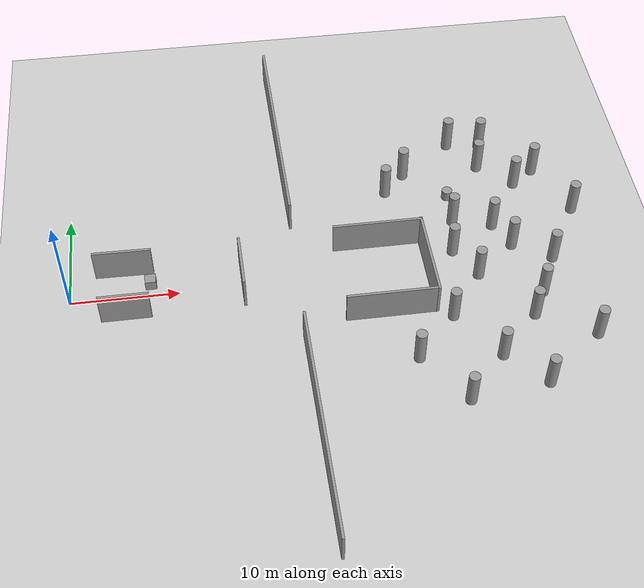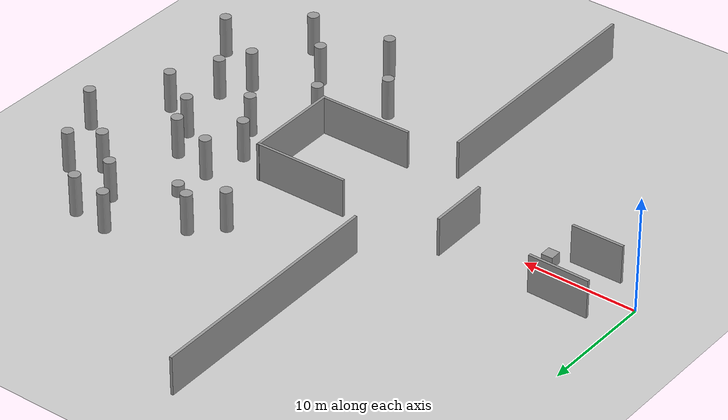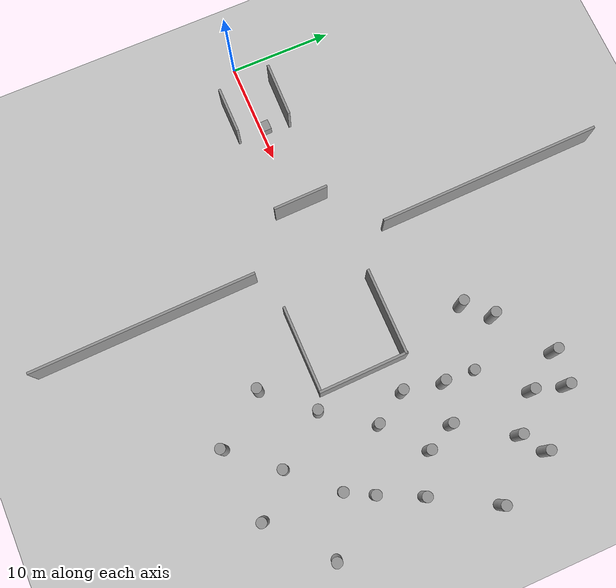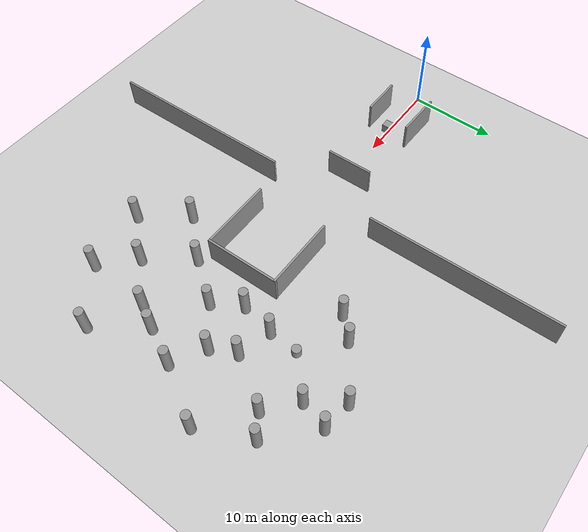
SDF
<sdf version="1.6">
 <world name="default">
  <plugin name="disable_physics" filename="libdisable_physics.so"/>
  <light name="sun" type="directional">
   <cast_shadows>0</cast_shadows>
   <pose>0 0 10 0 -0 0</pose>
   <diffuse>0.8 0.8 0.8 1</diffuse>
   <specular>0.2 0.2 0.2 1</specular>
   <attenuation>
    <range>1000</range>
    <constant>0.9</constant>
    <linear>0.01</linear>
    <quadratic>0.001</quadratic>
   </attenuation>
   <direction>-0.5 0.1 -0.9</direction>
  </light>
  <model name="ground_plane">
   <static>1</static>
   <link name="link">
    <collision name="collision">
     <geometry><plane><normal>0 0 1</normal><size>200 200</size></plane></geometry>
     <surface><friction><ode><mu>100</mu><mu2>50</mu2></ode></friction></surface>
    </collision>
    <visual name="visual">
     <cast_shadows>0</cast_shadows>
     <geometry><plane><normal>0 0 1</normal><size>200 200</size></plane></geometry>
     <material>
      <script><uri>file://media/materials/scripts/gazebo.material</uri><name>Gazebo/Grey</name></script>
     </material>
    </visual>
   </link>
  </model>
  <physics name="default_physics" default="0" type="ode">
   <max_step_size>0.001</max_step_size>
   <real_time_factor>1</real_time_factor>
   <real_time_update_rate>1000</real_time_update_rate>
  </physics>
  <scene><ambient>0.4 0.4 0.4 1</ambient><background>0.7 0.7 0.7 1</background><shadows>0</shadows></scene>
  <spherical_coordinates>
   <surface_model>EARTH_WGS84</surface_model>
   <latitude_deg>0</latitude_deg>
   <longitude_deg>0</longitude_deg>
   <elevation>0</elevation>
   <heading_deg>0</heading_deg>
  </spherical_coordinates>
  <gravity>0 0 -9.8</gravity>
  <magnetic_field>6e-06 2.3e-05 -4.2e-05</magnetic_field>
  <atmosphere type="adiabatic"/>
  <model name="unit_box_0_0">
   <pose>7.49173 0.286196 1.66667 0.000226 -8e-06 0.019931</pose>
   <link name="link">
    <inertial>
     <mass>1</mass>
     <inertia>
      <ixx>0.166667</ixx>
      <ixy>0</ixy>
      <ixz>0</ixz>
      <iyy>0.166667</iyy>
      <iyz>0</iyz>
      <izz>0.166667</izz>
     </inertia>
    </inertial>
    <collision name="collision"><geometry><box><size>0.999999 1 0.999999</size></box></geometry></collision>
    <visual name="visual">
     <geometry><box><size>0.999999 1 0.999999</size></box></geometry>
     <material>
      <script><name>Gazebo/Grey</name><uri>file://media/materials/scripts/gazebo.material</uri></script>
     </material>
    </visual>
   </link>
  </model>
  <model name="unit_box_0_0_clone">
   <pose>5.03452 2.80662 1.66712 6.7e-05 3e-06 -1.58611</pose>
   <link name="link">
    <inertial>
     <mass>1</mass>
     <inertia>
      <ixx>0.166667</ixx>
      <ixy>0</ixy>
      <ixz>0</ixz>
      <iyy>0.166667</iyy>
      <iyz>0</iyz>
      <izz>0.166667</izz>
     </inertia>
    </inertial>
    <collision name="collision"><geometry><box><size>0.237691 5.35848 3.33454</size></box></geometry></collision>
    <visual name="visual">
     <geometry><box><size>0.237691 5.35848 3.33454</size></box></geometry>
     <material>
      <script><name>Gazebo/Grey</name><uri>file://media/materials/scripts/gazebo.material</uri></script>
     </material>
    </visual>
   </link>
  </model>
  <model name="unit_box_0_0_clone_clone">
   <pose>5.09371 -2.35831 1.66712 6.7e-05 -3e-06 -1.56831</pose>
   <link name="link">
    <inertial>
     <mass>1</mass>
     <inertia>
      <ixx>0.166667</ixx>
      <ixy>0</ixy>
      <ixz>0</ixz>
      <iyy>0.166667</iyy>
      <iyz>0</iyz>
      <izz>0.166667</izz>
     </inertia>
    </inertial>
    <collision name="collision"><geometry><box><size>0.237691 4.56821 3.33454</size></box></geometry></collision>
    <visual name="visual">
     <geometry><box><size>0.237691 4.56821 3.33454</size></box></geometry>
     <material>
      <script><name>Gazebo/Grey</name><uri>file://media/materials/scripts/gazebo.material</uri></script>
     </material>
    </visual>
   </link>
  </model>
  <model name="unit_box_0_0_clone_0">
   <pose>15.8 0.490651 1.66667 -0.000226 8e-06 0.019874</pose>
   <link name="link">
    <inertial>
     <mass>1</mass>
     <inertia>
      <ixx>0.166667</ixx>
      <ixy>0</ixy>
      <ixz>0</ixz>
      <iyy>0.166667</iyy>
      <iyz>0</iyz>
      <izz>0.166667</izz>
     </inertia>
    </inertial>
    <collision name="collision"><geometry><box><size>0.237691 5.35848 3.33454</size></box></geometry></collision>
    <visual name="visual">
     <geometry><box><size>0.237691 5.35848 3.33454</size></box></geometry>
     <material>
      <script><name>Gazebo/Grey</name><uri>file://media/materials/scripts/gazebo.material</uri></script>
     </material>
    </visual>
   </link>
  </model>
  <model name="unit_box_0_0_clone_0_clone">
   <pose>20.6528 17.6306 1.66667 -0.000226 8e-06 0.019874</pose>
   <link name="link">
    <inertial>
     <mass>1</mass>
     <inertia>
      <ixx>0.166667</ixx>
      <ixy>0</ixy>
      <ixz>0</ixz>
      <iyy>0.166667</iyy>
      <iyz>0</iyz>
      <izz>0.166667</izz>
     </inertia>
    </inertial>
    <collision name="collision"><geometry><box><size>0.237691 21.9937 3.33454</size></box></geometry></collision>
    <visual name="visual">
     <geometry><box><size>0.237691 21.9937 3.33454</size></box></geometry>
     <material>
      <script><name>Gazebo/Grey</name><uri>file://media/materials/scripts/gazebo.material</uri></script>
     </material>
    </visual>
   </link>
  </model>
  <model name="unit_box_0_0_clone_0_clone_0">
   <pose>20.9778 -17.1378 1.66667 -0.000226 8e-06 0.019874</pose>
   <link name="link">
    <inertial>
     <mass>1</mass>
     <inertia>
      <ixx>0.166667</ixx>
      <ixy>0</ixy>
      <ixz>0</ixz>
      <iyy>0.166667</iyy>
      <iyz>0</iyz>
      <izz>0.166667</izz>
     </inertia>
    </inertial>
    <collision name="collision"><geometry><box><size>0.237691 21.9937 3.33454</size></box></geometry></collision>
    <visual name="visual">
     <geometry><box><size>0.237691 21.9937 3.33454</size></box></geometry>
     <material>
      <script><name>Gazebo/Grey</name><uri>file://media/materials/scripts/gazebo.material</uri></script>
     </material>
    </visual>
   </link>
  </model>
  <model name="unit_cylinder_0">
   <pose>36.5123 8.86063 0.5 0 -0 0</pose>
   <link name="link">
    <inertial>
     <mass>1</mass>
     <inertia><ixx>0.145833</ixx><ixy>0</ixy><ixz>0</ixz><iyy>0.145833</iyy><iyz>0</iyz><izz>0.125</izz></inertia>
    </inertial>
    <collision name="collision">
     <geometry><cylinder><radius>0.5</radius><length>1</length></cylinder></geometry>
    </collision>
    <visual name="visual">
     <geometry><cylinder><radius>0.5</radius><length>1</length></cylinder></geometry>
     <material>
      <script><name>Gazebo/Grey</name><uri>file://media/materials/scripts/gazebo.material</uri></script>
     </material>
    </visual>
   </link>
  </model>
  <model name="unit_cylinder_0_clone">
   <pose>35.7139 1.81409 0.5 0 -0 0</pose>
   <link name="link">
    <inertial>
     <mass>1</mass>
     <inertia><ixx>0.145833</ixx><ixy>0</ixy><ixz>0</ixz><iyy>0.145833</iyy><iyz>0</iyz><izz>0.125</izz></inertia>
    </inertial>
    <collision name="collision">
     <geometry><cylinder><radius>0.5</radius><length>6.03342</length></cylinder></geometry>
    </collision>
    <visual name="visual">
     <geometry><cylinder><radius>0.5</radius><length>6.03342</length></cylinder></geometry>
     <material>
      <script><name>Gazebo/Grey</name><uri>file://media/materials/scripts/gazebo.material</uri></script>
     </material>
    </visual>
   </link>
  </model>
  <model name="unit_cylinder_0_clone_0">
   <pose>34.3331 -5.78751 0.5 0 -0 0</pose>
   <link name="link">
    <inertial>
     <mass>1</mass>
     <inertia><ixx>0.145833</ixx><ixy>0</ixy><ixz>0</ixz><iyy>0.145833</iyy><iyz>0</iyz><izz>0.125</izz></inertia>
    </inertial>
    <collision name="collision">
     <geometry><cylinder><radius>0.5</radius><length>6.03342</length></cylinder></geometry>
    </collision>
    <visual name="visual">
     <geometry><cylinder><radius>0.5</radius><length>6.03342</length></cylinder></geometry>
     <material>
      <script><name>Gazebo/Grey</name><uri>file://media/materials/scripts/gazebo.material</uri></script>
     </material>
    </visual>
   </link>
  </model>
  <model name="unit_cylinder_0_clone_1">
   <pose>36.4257 5.60163 0.5 0 -0 0</pose>
   <link name="link">
    <inertial>
     <mass>1</mass>
     <inertia><ixx>0.145833</ixx><ixy>0</ixy><ixz>0</ixz><iyy>0.145833</iyy><iyz>0</iyz><izz>0.125</izz></inertia>
    </inertial>
    <collision name="collision">
     <geometry><cylinder><radius>0.5</radius><length>6.03342</length></cylinder></geometry>
    </collision>
    <visual name="visual">
     <geometry><cylinder><radius>0.5</radius><length>6.03342</length></cylinder></geometry>
     <material>
      <script><name>Gazebo/Grey</name><uri>file://media/materials/scripts/gazebo.material</uri></script>
     </material>
    </visual>
   </link>
  </model>
  <model name="unit_cylinder_0_clone_2">
   <pose>40.0951 4.60307 0.5 0 -0 0</pose>
   <link name="link">
    <inertial>
     <mass>1</mass>
     <inertia><ixx>0.145833</ixx><ixy>0</ixy><ixz>0</ixz><iyy>0.145833</iyy><iyz>0</iyz><izz>0.125</izz></inertia>
    </inertial>
    <collision name="collision">
     <geometry><cylinder><radius>0.5</radius><length>6.03342</length></cylinder></geometry>
    </collision>
    <visual name="visual">
     <geometry><cylinder><radius>0.5</radius><length>6.03342</length></cylinder></geometry>
     <material>
      <script><name>Gazebo/Grey</name><uri>file://media/materials/scripts/gazebo.material</uri></script>
     </material>
    </visual>
   </link>
  </model>
  <model name="unit_cylinder_0_clone_3">
   <pose>43.0121 -4.07604 0.5 0 -0 0</pose>
   <link name="link">
    <inertial>
     <mass>1</mass>
     <inertia><ixx>0.145833</ixx><ixy>0</ixy><ixz>0</ixz><iyy>0.145833</iyy><iyz>0</iyz><izz>0.125</izz></inertia>
    </inertial>
    <collision name="collision">
     <geometry><cylinder><radius>0.5</radius><length>6.03342</length></cylinder></geometry>
    </collision>
    <visual name="visual">
     <geometry><cylinder><radius>0.5</radius><length>6.03342</length></cylinder></geometry>
     <material>
      <script><name>Gazebo/Grey</name><uri>file://media/materials/scripts/gazebo.material</uri></script>
     </material>
    </visual>
   </link>
  </model>
  <model name="unit_cylinder_0_clone_4">
   <pose>44.8773 -0.138697 0.5 0 -0 0</pose>
   <link name="link">
    <inertial>
     <mass>1</mass>
     <inertia><ixx>0.145833</ixx><ixy>0</ixy><ixz>0</ixz><iyy>0.145833</iyy><iyz>0</iyz><izz>0.125</izz></inertia>
    </inertial>
    <collision name="collision">
     <geometry><cylinder><radius>0.5</radius><length>6.03342</length></cylinder></geometry>
    </collision>
    <visual name="visual">
     <geometry><cylinder><radius>0.5</radius><length>6.03342</length></cylinder></geometry>
     <material>
      <script><name>Gazebo/Grey</name><uri>file://media/materials/scripts/gazebo.material</uri></script>
     </material>
    </visual>
   </link>
  </model>
  <model name="unit_cylinder_0_clone_5">
   <pose>41.4106 1.8899 0.5 0 -0 0</pose>
   <link name="link">
    <inertial>
     <mass>1</mass>
     <inertia><ixx>0.145833</ixx><ixy>0</ixy><ixz>0</ixz><iyy>0.145833</iyy><iyz>0</iyz><izz>0.125</izz></inertia>
    </inertial>
    <collision name="collision">
     <geometry><cylinder><radius>0.5</radius><length>6.03342</length></cylinder></geometry>
    </collision>
    <visual name="visual">
     <geometry><cylinder><radius>0.5</radius><length>6.03342</length></cylinder></geometry>
     <material>
      <script><name>Gazebo/Grey</name><uri>file://media/materials/scripts/gazebo.material</uri></script>
     </material>
    </visual>
   </link>
  </model>
  <model name="unit_cylinder_0_clone_6">
   <pose>41.6644 -6.5691 0.5 0 -0 0</pose>
   <link name="link">
    <inertial>
     <mass>1</mass>
     <inertia><ixx>0.145833</ixx><ixy>0</ixy><ixz>0</ixz><iyy>0.145833</iyy><iyz>0</iyz><izz>0.125</izz></inertia>
    </inertial>
    <collision name="collision">
     <geometry><cylinder><radius>0.5</radius><length>6.03342</length></cylinder></geometry>
    </collision>
    <visual name="visual">
     <geometry><cylinder><radius>0.5</radius><length>6.03342</length></cylinder></geometry>
     <material>
      <script><name>Gazebo/Grey</name><uri>file://media/materials/scripts/gazebo.material</uri></script>
     </material>
    </visual>
   </link>
  </model>
  <model name="unit_cylinder_0_clone_7">
   <pose>37.5721 -1.32123 0.5 0 -0 0</pose>
   <link name="link">
    <inertial>
     <mass>1</mass>
     <inertia><ixx>0.145833</ixx><ixy>0</ixy><ixz>0</ixz><iyy>0.145833</iyy><iyz>0</iyz><izz>0.125</izz></inertia>
    </inertial>
    <collision name="collision">
     <geometry><cylinder><radius>0.5</radius><length>6.03342</length></cylinder></geometry>
    </collision>
    <visual name="visual">
     <geometry><cylinder><radius>0.5</radius><length>6.03342</length></cylinder></geometry>
     <material>
      <script><name>Gazebo/Grey</name><uri>file://media/materials/scripts/gazebo.material</uri></script>
     </material>
    </visual>
   </link>
  </model>
  <model name="unit_cylinder_0_clone_8">
   <pose>45.5642 11.3365 0.5 0 -0 0</pose>
   <link name="link">
    <inertial>
     <mass>1</mass>
     <inertia><ixx>0.145833</ixx><ixy>0</ixy><ixz>0</ixz><iyy>0.145833</iyy><iyz>0</iyz><izz>0.125</izz></inertia>
    </inertial>
    <collision name="collision">
     <geometry><cylinder><radius>0.5</radius><length>6.03342</length></cylinder></geometry>
    </collision>
    <visual name="visual">
     <geometry><cylinder><radius>0.5</radius><length>6.03342</length></cylinder></geometry>
     <material>
      <script><name>Gazebo/Grey</name><uri>file://media/materials/scripts/gazebo.material</uri></script>
     </material>
    </visual>
   </link>
  </model>
  <model name="unit_cylinder_0_clone_9">
   <pose>43.3589 9.77113 0.5 0 -0 0</pose>
   <link name="link">
    <inertial>
     <mass>1</mass>
     <inertia><ixx>0.145833</ixx><ixy>0</ixy><ixz>0</ixz><iyy>0.145833</iyy><iyz>0</iyz><izz>0.125</izz></inertia>
    </inertial>
    <collision name="collision">
     <geometry><cylinder><radius>0.5</radius><length>6.03342</length></cylinder></geometry>
    </collision>
    <visual name="visual">
     <geometry><cylinder><radius>0.5</radius><length>6.03342</length></cylinder></geometry>
     <material>
      <script><name>Gazebo/Grey</name><uri>file://media/materials/scripts/gazebo.material</uri></script>
     </material>
    </visual>
   </link>
  </model>
  <model name="unit_cylinder_0_clone_10">
   <pose>48.2101 5.73588 0.5 0 -0 0</pose>
   <link name="link">
    <inertial>
     <mass>1</mass>
     <inertia><ixx>0.145833</ixx><ixy>0</ixy><ixz>0</ixz><iyy>0.145833</iyy><iyz>0</iyz><izz>0.125</izz></inertia>
    </inertial>
    <collision name="collision">
     <geometry><cylinder><radius>0.5</radius><length>6.03342</length></cylinder></geometry>
    </collision>
    <visual name="visual">
     <geometry><cylinder><radius>0.5</radius><length>6.03342</length></cylinder></geometry>
     <material>
      <script><name>Gazebo/Grey</name><uri>file://media/materials/scripts/gazebo.material</uri></script>
     </material>
    </visual>
   </link>
  </model>
  <model name="unit_cylinder_0_clone_11">
   <pose>37.8195 -10.6225 0.5 0 -0 0</pose>
   <link name="link">
    <inertial>
     <mass>1</mass>
     <inertia><ixx>0.145833</ixx><ixy>0</ixy><ixz>0</ixz><iyy>0.145833</iyy><iyz>0</iyz><izz>0.125</izz></inertia>
    </inertial>
    <collision name="collision">
     <geometry><cylinder><radius>0.5</radius><length>6.03342</length></cylinder></geometry>
    </collision>
    <visual name="visual">
     <geometry><cylinder><radius>0.5</radius><length>6.03342</length></cylinder></geometry>
     <material>
      <script><name>Gazebo/Grey</name><uri>file://media/materials/scripts/gazebo.material</uri></script>
     </material>
    </visual>
   </link>
  </model>
  <model name="unit_cylinder_0_clone_12">
   <pose>32.6997 12.3147 0.5 0 -0 0</pose>
   <link name="link">
    <inertial>
     <mass>1</mass>
     <inertia><ixx>0.145833</ixx><ixy>0</ixy><ixz>0</ixz><iyy>0.145833</iyy><iyz>0</iyz><izz>0.125</izz></inertia>
    </inertial>
    <collision name="collision">
     <geometry><cylinder><radius>0.5</radius><length>6.03342</length></cylinder></geometry>
    </collision>
    <visual name="visual">
     <geometry><cylinder><radius>0.5</radius><length>6.03342</length></cylinder></geometry>
     <material>
      <script><name>Gazebo/Grey</name><uri>file://media/materials/scripts/gazebo.material</uri></script>
     </material>
    </visual>
   </link>
  </model>
  <model name="unit_cylinder_0_clone_13">
   <pose>30.5887 10.1395 0.5 0 -0 0</pose>
   <link name="link">
    <inertial>
     <mass>1</mass>
     <inertia><ixx>0.145833</ixx><ixy>0</ixy><ixz>0</ixz><iyy>0.145833</iyy><iyz>0</iyz><izz>0.125</izz></inertia>
    </inertial>
    <collision name="collision">
     <geometry><cylinder><radius>0.5</radius><length>6.03342</length></cylinder></geometry>
    </collision>
    <visual name="visual">
     <geometry><cylinder><radius>0.5</radius><length>6.03342</length></cylinder></geometry>
     <material>
      <script><name>Gazebo/Grey</name><uri>file://media/materials/scripts/gazebo.material</uri></script>
     </material>
    </visual>
   </link>
  </model>
  <model name="unit_cylinder_0_clone_14">
   <pose>30.4732 -9.99792 0.5 0 -0 0</pose>
   <link name="link">
    <inertial>
     <mass>1</mass>
     <inertia><ixx>0.145833</ixx><ixy>0</ixy><ixz>0</ixz><iyy>0.145833</iyy><iyz>0</iyz><izz>0.125</izz></inertia>
    </inertial>
    <collision name="collision">
     <geometry><cylinder><radius>0.5</radius><length>6.03342</length></cylinder></geometry>
    </collision>
    <visual name="visual">
     <geometry><cylinder><radius>0.5</radius><length>6.03342</length></cylinder></geometry>
     <material>
      <script><name>Gazebo/Grey</name><uri>file://media/materials/scripts/gazebo.material</uri></script>
     </material>
    </visual>
   </link>
  </model>
  <model name="unit_cylinder_0_clone_15">
   <pose>46.7352 -9.39949 0.5 0 -0 0</pose>
   <link name="link">
    <inertial>
     <mass>1</mass>
     <inertia><ixx>0.145833</ixx><ixy>0</ixy><ixz>0</ixz><iyy>0.145833</iyy><iyz>0</iyz><izz>0.125</izz></inertia>
    </inertial>
    <collision name="collision">
     <geometry><cylinder><radius>0.5</radius><length>6.03342</length></cylinder></geometry>
    </collision>
    <visual name="visual">
     <geometry><cylinder><radius>0.5</radius><length>6.03342</length></cylinder></geometry>
     <material>
      <script><name>Gazebo/Grey</name><uri>file://media/materials/scripts/gazebo.material</uri></script>
     </material>
    </visual>
   </link>
  </model>
  <model name="unit_cylinder_0_clone_16">
   <pose>37.8552 15.9705 0.5 0 -0 0</pose>
   <link name="link">
    <inertial>
     <mass>1</mass>
     <inertia><ixx>0.145833</ixx><ixy>0</ixy><ixz>0</ixz><iyy>0.145833</iyy><iyz>0</iyz><izz>0.125</izz></inertia>
    </inertial>
    <collision name="collision">
     <geometry><cylinder><radius>0.5</radius><length>6.03342</length></cylinder></geometry>
    </collision>
    <visual name="visual">
     <geometry><cylinder><radius>0.5</radius><length>6.03342</length></cylinder></geometry>
     <material>
      <script><name>Gazebo/Grey</name><uri>file://media/materials/scripts/gazebo.material</uri></script>
     </material>
    </visual>
   </link>
  </model>
  <model name="unit_cylinder_0_clone_17">
   <pose>41.0775 15.5736 0.5 0 -0 0</pose>
   <link name="link">
    <inertial>
     <mass>1</mass>
     <inertia><ixx>0.145833</ixx><ixy>0</ixy><ixz>0</ixz><iyy>0.145833</iyy><iyz>0</iyz><izz>0.125</izz></inertia>
    </inertial>
    <collision name="collision">
     <geometry><cylinder><radius>0.5</radius><length>6.03342</length></cylinder></geometry>
    </collision>
    <visual name="visual">
     <geometry><cylinder><radius>0.5</radius><length>6.03342</length></cylinder></geometry>
     <material>
      <script><name>Gazebo/Grey</name><uri>file://media/materials/scripts/gazebo.material</uri></script>
     </material>
    </visual>
   </link>
  </model>
  <model name="unit_cylinder_0_clone_18">
   <pose>34.0572 -14.8992 0.5 0 -0 0</pose>
   <link name="link">
    <inertial>
     <mass>1</mass>
     <inertia><ixx>0.145833</ixx><ixy>0</ixy><ixz>0</ixz><iyy>0.145833</iyy><iyz>0</iyz><izz>0.125</izz></inertia>
    </inertial>
    <collision name="collision">
     <geometry><cylinder><radius>0.5</radius><length>6.03342</length></cylinder></geometry>
    </collision>
    <visual name="visual">
     <geometry><cylinder><radius>0.5</radius><length>6.03342</length></cylinder></geometry>
     <material>
      <script><name>Gazebo/Grey</name><uri>file://media/materials/scripts/gazebo.material</uri></script>
     </material>
    </visual>
   </link>
  </model>
  <model name="unit_cylinder_0_clone_19">
   <pose>41.2 -13.9942 0.5 0 -0 0</pose>
   <link name="link">
    <inertial>
     <mass>1</mass>
     <inertia><ixx>0.145833</ixx><ixy>0</ixy><ixz>0</ixz><iyy>0.145833</iyy><iyz>0</iyz><izz>0.125</izz></inertia>
    </inertial>
    <collision name="collision">
     <geometry><cylinder><radius>0.5</radius><length>6.03342</length></cylinder></geometry>
    </collision>
    <visual name="visual">
     <geometry><cylinder><radius>0.5</radius><length>6.03342</length></cylinder></geometry>
     <material>
      <script><name>Gazebo/Grey</name><uri>file://media/materials/scripts/gazebo.material</uri></script>
     </material>
    </visual>
   </link>
  </model>
  <model name="unit_cylinder_0_clone_20">
   <pose>40.2464 12.4856 0.5 0 -0 0</pose>
   <link name="link">
    <inertial>
     <mass>1</mass>
     <inertia><ixx>0.145833</ixx><ixy>0</ixy><ixz>0</ixz><iyy>0.145833</iyy><iyz>0</iyz><izz>0.125</izz></inertia>
    </inertial>
    <collision name="collision">
     <geometry><cylinder><radius>0.5</radius><length>6.03342</length></cylinder></geometry>
    </collision>
    <visual name="visual">
     <geometry><cylinder><radius>0.5</radius><length>6.03342</length></cylinder></geometry>
     <material>
      <script><name>Gazebo/Grey</name><uri>file://media/materials/scripts/gazebo.material</uri></script>
     </material>
    </visual>
   </link>
  </model>
  <model name="unit_box_0_0_clone_0_clone_0_clone">
   <pose>32.9222 -0.743734 1.66665 -0.000226 8e-06 0.019874</pose>
   <link name="link">
    <inertial>
     <mass>1</mass>
     <inertia>
      <ixx>0.166667</ixx>
      <ixy>0</ixy>
      <ixz>0</ixz>
      <iyy>0.166667</iyy>
      <iyz>0</iyz>
      <izz>0.166667</izz>
     </inertia>
    </inertial>
    <collision name="collision"><geometry><box><size>0.237691 8.66981 3.33454</size></box></geometry></collision>
    <visual name="visual">
     <geometry><box><size>0.237691 8.66981 3.33454</size></box></geometry>
     <material>
      <script><name>Gazebo/Grey</name><uri>file://media/materials/scripts/gazebo.material</uri></script>
     </material>
    </visual>
   </link>
  </model>
  <model name="unit_box_0_0_clone_clone_clone_0">
   <pose>28.7102 3.41357 1.66698 -6.7e-05 3e-06 -1.56835</pose>
   <link name="link">
    <inertial>
     <mass>1</mass>
     <inertia>
      <ixx>0.166667</ixx>
      <ixy>0</ixy>
      <ixz>0</ixz>
      <iyy>0.166667</iyy>
      <iyz>0</iyz>
      <izz>0.166667</izz>
     </inertia>
    </inertial>
    <collision name="collision"><geometry><box><size>0.237691 8.358 3.33454</size></box></geometry></collision>
    <visual name="visual">
     <geometry><box><size>0.237691 8.358 3.33454</size></box></geometry>
     <material>
      <script><name>Gazebo/Grey</name><uri>file://media/materials/scripts/gazebo.material</uri></script>
     </material>
    </visual>
   </link>
  </model>
  <model name="unit_box_0_0_clone_clone_clone_0_clone">
   <pose>28.8519 -4.9539 1.66712 -6.7e-05 3e-06 -1.56835</pose>
   <link name="link">
    <inertial>
     <mass>1</mass>
     <inertia>
      <ixx>0.166667</ixx>
      <ixy>0</ixy>
      <ixz>0</ixz>
      <iyy>0.166667</iyy>
      <iyz>0</iyz>
      <izz>0.166667</izz>
     </inertia>
    </inertial>
    <collision name="collision"><geometry><box><size>0.237691 8.35797 3.33454</size></box></geometry></collision>
    <visual name="visual">
     <geometry><box><size>0.237691 8.35797 3.33454</size></box></geometry>
     <material>
      <script><name>Gazebo/Grey</name><uri>file://media/materials/scripts/gazebo.material</uri></script>
     </material>
    </visual>
   </link>
  </model>
 </world>
</sdf>
